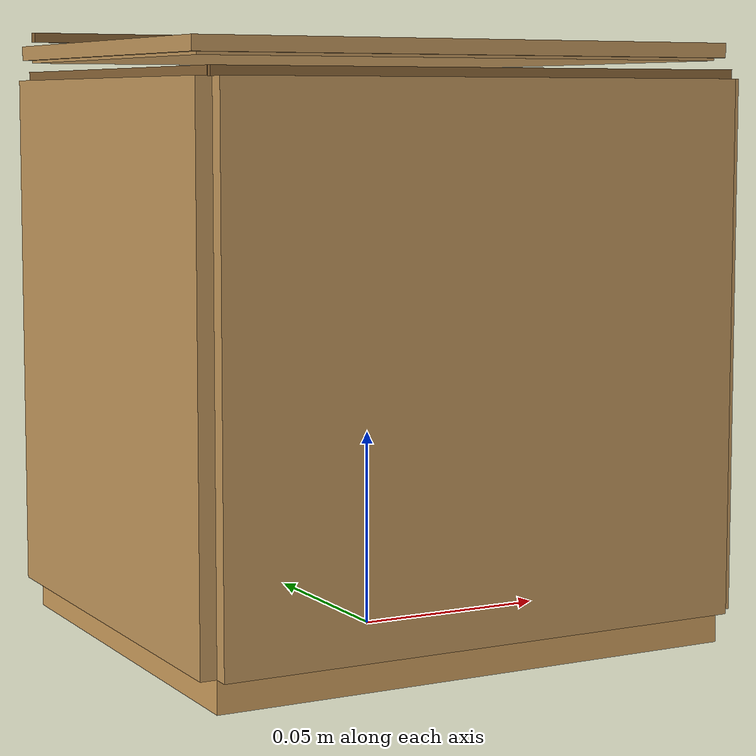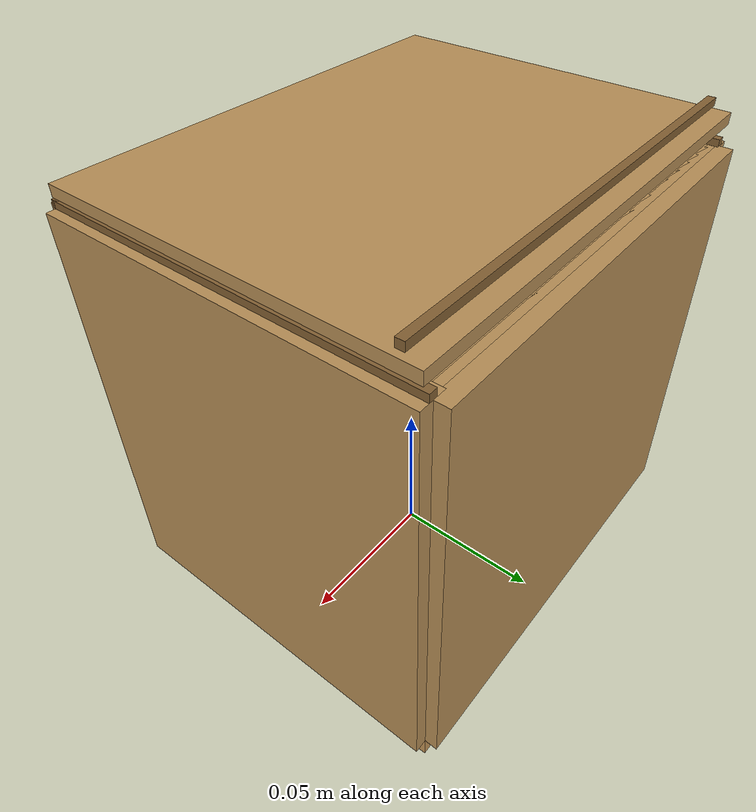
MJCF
<mujoco model="cardboard_box">
  <compiler angle="radian" />
  <asset>
    <material name="cardboard_outer" rgba="0.72 0.56 0.34 1" specular="0.015" shininess="0.01" />
    <material name="cardboard_inner" rgba="0.76 0.58 0.34 1" specular="0.01" shininess="0.01" />
    <material name="cardboard_edge" rgba="0.52 0.38 0.20 1" specular="0.01" shininess="0.01" />
  </asset>
  <worldbody>
    <body>
      <body name="object">
        <site name="contain_region" type="box" pos="0 0 0.086" quat="1 0 0 0" size="0.062 0.052 0.070" rgba="0 0 0 0" />

        <geom name="box_bottom_collision" type="box" pos="0 0 0.020" size="0.068 0.058 0.020" rgba="0.76 0.58 0.34 1" group="0" friction="0.95 0.3 0.1" />
        <geom name="box_front_collision" type="box" pos="0 -0.058 0.074" size="0.068 0.0040 0.066" material="cardboard_outer" group="0" friction="1.05 0.35 0.1" solref="0.010 1" solimp="0.90 0.98 0.001" />
        <geom name="box_back_collision" type="box" pos="0 0.058 0.074" size="0.068 0.0040 0.066" material="cardboard_outer" group="0" friction="1.05 0.35 0.1" solref="0.010 1" solimp="0.90 0.98 0.001" />
        <geom name="box_left_collision" type="box" pos="-0.068 0 0.074" size="0.0040 0.058 0.066" material="cardboard_outer" group="0" friction="1.05 0.35 0.1" solref="0.010 1" solimp="0.90 0.98 0.001" />
        <geom name="box_right_collision" type="box" pos="0.068 0 0.074" size="0.0040 0.058 0.066" material="cardboard_outer" group="0" friction="1.05 0.35 0.1" solref="0.010 1" solimp="0.90 0.98 0.001" />

        <geom name="box_bottom_visual" type="box" pos="0 0 0.020" size="0.067 0.057 0.020" rgba="0.76 0.58 0.34 1" group="1" contype="0" conaffinity="0" />
        <geom name="box_inner_floor_visual" type="box" pos="0 0 0.044" size="0.061 0.051 0.005" rgba="0.76 0.58 0.34 1" group="1" contype="0" conaffinity="0" />
        <geom name="box_front_visual" type="box" pos="0 -0.056 0.075" size="0.067 0.0012 0.065" material="cardboard_outer" group="1" contype="0" conaffinity="0" />
        <geom name="box_back_visual" type="box" pos="0 0.056 0.075" size="0.067 0.0012 0.065" material="cardboard_outer" group="1" contype="0" conaffinity="0" />
        <geom name="box_left_visual" type="box" pos="-0.066 0 0.075" size="0.0012 0.057 0.065" material="cardboard_outer" group="1" contype="0" conaffinity="0" />
        <geom name="box_right_visual" type="box" pos="0.066 0 0.075" size="0.0012 0.057 0.065" material="cardboard_outer" group="1" contype="0" conaffinity="0" />
        <geom name="front_top_edge_visual" type="box" pos="0 -0.058 0.141" size="0.069 0.0012 0.0012" material="cardboard_edge" group="1" contype="0" conaffinity="0" />
        <geom name="left_top_edge_visual" type="box" pos="-0.068 0 0.141" size="0.0012 0.058 0.0012" material="cardboard_edge" group="1" contype="0" conaffinity="0" />
        <geom name="right_top_edge_visual" type="box" pos="0.068 0 0.141" size="0.0012 0.058 0.0012" material="cardboard_edge" group="1" contype="0" conaffinity="0" />

        <body name="lid_hinge_body" pos="0 0.058 0.142">
          <joint name="lid_hinge" type="hinge" pos="0 0 0" axis="1 0 0" limited="true" range="-2.75 0.02" damping="4.0" armature="0.004" frictionloss="0.025" />
          <geom name="attached_lid_collision" type="box" pos="0 -0.056 0.004" size="0.069 0.054 0.0015" material="cardboard_outer" group="0" friction="1.0 0.3 0.1" mass="0.012" />
          <geom name="attached_lid_visual" type="box" pos="0 -0.056 0.005" size="0.071 0.056 0.0018" material="cardboard_outer" group="1" contype="0" conaffinity="0" />
          <geom name="attached_lid_fold_line" type="box" pos="0 -0.006 0.009" size="0.070 0.0012 0.0012" material="cardboard_edge" group="1" contype="0" conaffinity="0" />
        </body>
      </body>
      <site rgba="0 0 0 0" size="0.005" pos="0 0 -0.004" name="bottom_site" />
      <site rgba="0 0 0 0" size="0.005" pos="0 0 0.150" name="top_site" />
      <site rgba="0 0 0 0" size="0.078" pos="0.078 0.078 0" name="horizontal_radius_site" />
    </body>
  </worldbody>
</mujoco>
